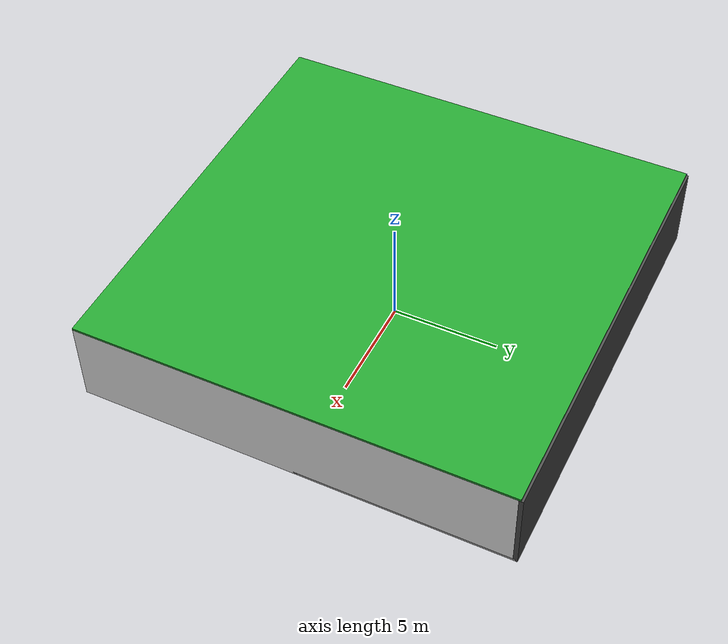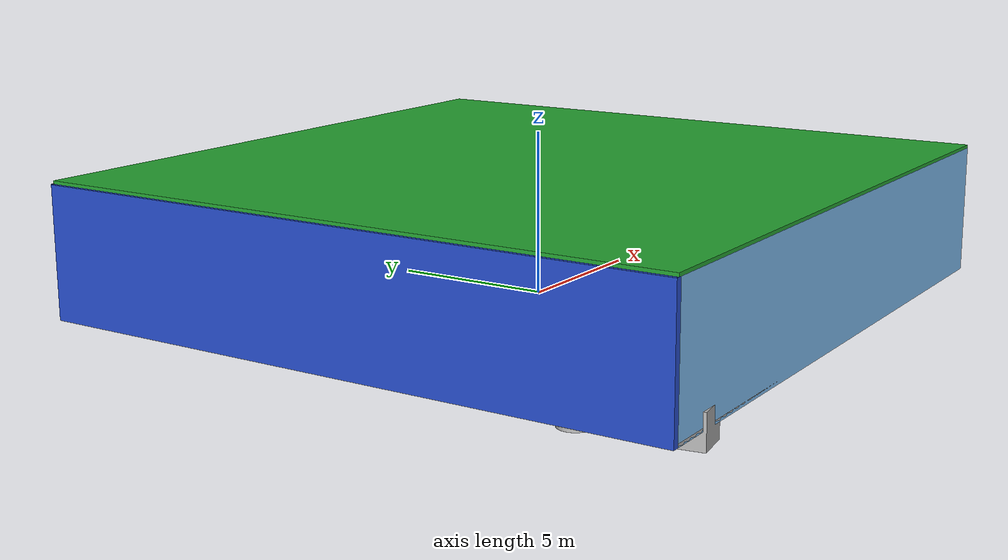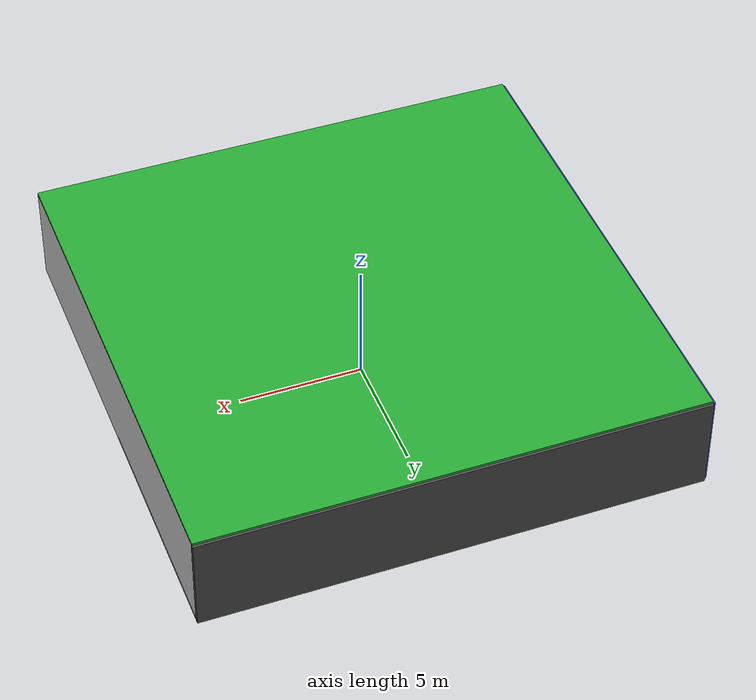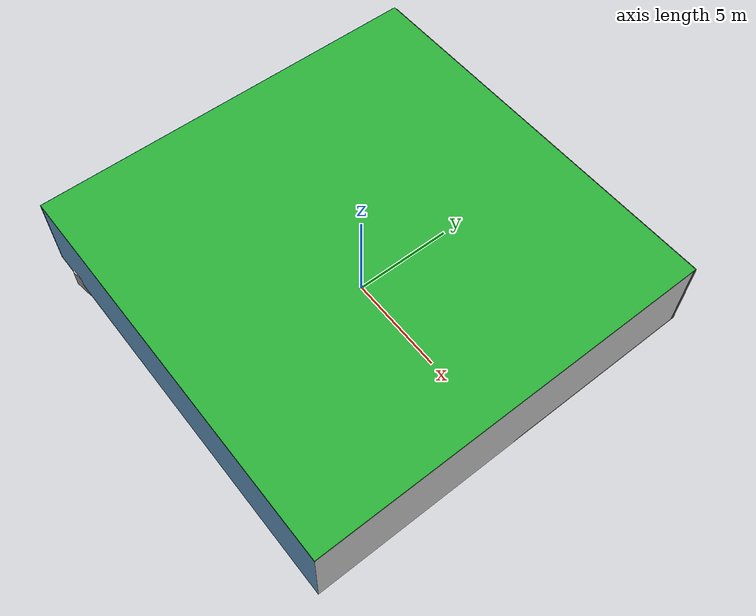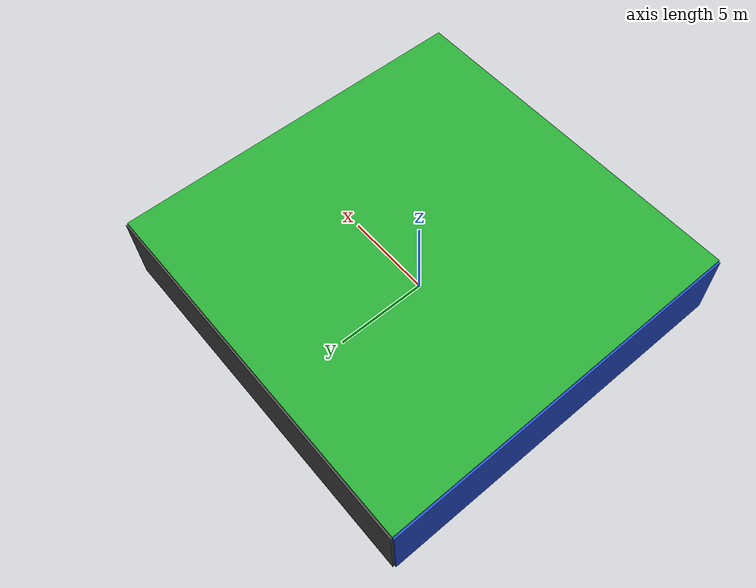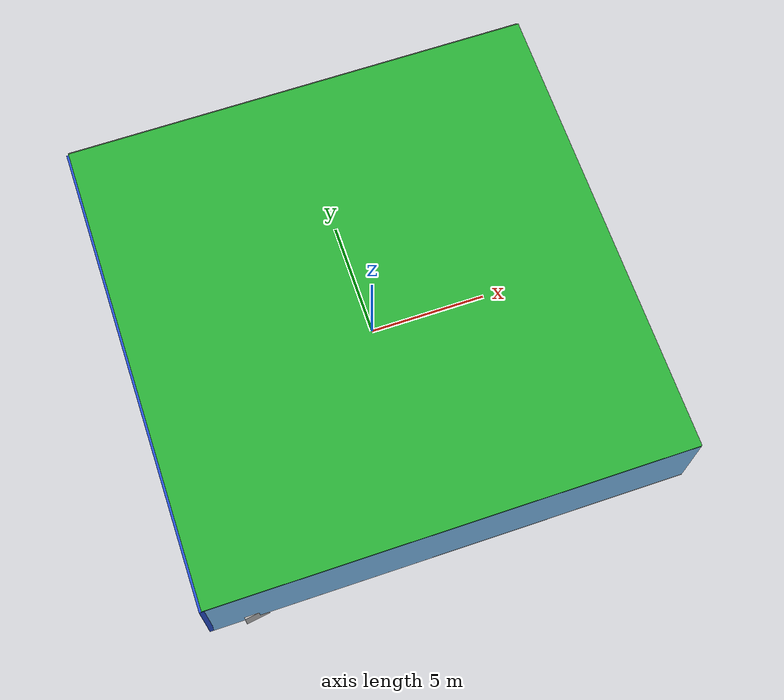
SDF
<sdf version="1.4">
 <world name="default">
  <physics type="ode">
   <max_step_size>0.001</max_step_size>
   <real_time_factor>1</real_time_factor>
   <real_time_update_rate>1000</real_time_update_rate>
   <gravity>0 0 -9.8</gravity>
  </physics>
  <scene><ambient>0.4 0.4 0.4 1</ambient><background>0.7 0.7 0.7 1</background><shadows>1</shadows></scene>
  <model name="Surrounding">
   <static>1</static>
   <link name="Ceiling">
    <collision name="Ceiling_Collision"><geometry><box><size>20 20 0.1</size></box></geometry></collision>
    <visual name="Ceiling_Visual">
     <geometry><box><size>20 20 0.1</size></box></geometry>
     <material>
      <script><uri>file://media/materials/scripts/gazebo.material</uri><name>Gazebo/GreenGlow</name></script>
     </material>
    </visual>
    <pose>0 0 4.05 0 0 0</pose>
   </link>
   <link name="Wall_South">
    <collision name="Wall_South_Collision">
     <geometry><box><size>20 0 4</size></box></geometry>
     <pose>0 0 2 0 -0 0</pose>
    </collision>
    <visual name="Wall_South_Visual">
     <pose>0 0 2 0 -0 0</pose>
     <geometry><box><size>20 0 4</size></box></geometry>
     <material>
      <script><uri>file://media/materials/scripts/gazebo.material</uri><name>Gazebo/SkyBlue</name></script>
     </material>
    </visual>
    <velocity_decay><linear>0</linear><angular>0</angular></velocity_decay>
    <pose>0 -10 0 0 -0 0</pose>
   </link>
   <link name="Wall_East">
    <collision name="Wall_21_Collision">
     <geometry><box><size>20 0 4</size></box></geometry>
     <pose>0 0 2 0 -0 0</pose>
    </collision>
    <visual name="Wall_21_Visual">
     <pose>0 0 2 0 -0 0</pose>
     <geometry><box><size>20 0 4</size></box></geometry>
     <material>
      <script><uri>file://media/materials/scripts/gazebo.material</uri><name>Gazebo/WhiteGlow</name></script>
     </material>
    </visual>
    <velocity_decay><linear>0</linear><angular>0</angular></velocity_decay>
    <pose>10 0 0 0 -0 1.5708</pose>
   </link>
   <link name="Wall_North">
    <collision name="Wall_22_Collision">
     <geometry><box><size>20 0.2 4</size></box></geometry>
     <pose>0 0 2 0 -0 0</pose>
    </collision>
    <visual name="Wall_22_Visual">
     <pose>0 0 2 0 -0 0</pose>
     <geometry><box><size>20 0.2 4</size></box></geometry>
     <material>
      <script><uri>file://media/materials/scripts/gazebo.material</uri><name>Gazebo/DarkGrey</name></script>
     </material>
    </visual>
    <velocity_decay><linear>0</linear><angular>0</angular></velocity_decay>
    <pose>0 10 0 0 -0 0</pose>
   </link>
   <link name="Wall_West">
    <collision name="Wall_23_Collision">
     <geometry><box><size>20 0.2 4</size></box></geometry>
     <pose>0 0 2 0 -0 0</pose>
    </collision>
    <visual name="Wall_23_Visual">
     <pose>0 0 2 0 -0 0</pose>
     <geometry><box><size>20 0.2 4</size></box></geometry>
     <material>
      <script><uri>file://media/materials/scripts/gazebo.material</uri><name>Gazebo/BlueGlow</name></script>
     </material>
    </visual>
    <velocity_decay><linear>0</linear><angular>0</angular></velocity_decay>
    <pose>-10 0 0 0 0 -1.5708</pose>
   </link>
   <link name="Ground_link">
    <collision name="collision">
     <pose>0 0 .05 0 -0 0</pose>
     <geometry><box><size>20 20 0.1</size></box></geometry>
    </collision>
    <visual name="visual">
     <pose>0 0 .05 0 -0 0</pose>
     <geometry><box><size>20 20 0.1</size></box></geometry>
     <material>
      <script><uri>file://media/materials/scripts/gazebo.material</uri><name>Gazebo/Pioneer2Body</name></script>
     </material>
    </visual>
   </link>
   <static>1</static>
  </model>
  <spherical_coordinates>
   <surface_model>EARTH_WGS84</surface_model>
   <latitude_deg>0</latitude_deg>
   <longitude_deg>0</longitude_deg>
   <elevation>0</elevation>
   <heading_deg>0</heading_deg>
  </spherical_coordinates>
  <light name="lightball_0" type="diffuse">
   <diffuse>0.8 0.8 0.8 1</diffuse>
   <specular>0.2 0.2 0.2 1</specular>
   <attenuation>
    <range>100</range>
    <constant>0.7</constant>
    <linear>0.01</linear>
    <quadratic>0.001</quadratic>
   </attenuation>
   <direction>-0.5 0.1 -0.9</direction>
   <pose>6.62815216111 8.31020105036 2.63860060734 0 0 0</pose>
  </light>
  <light name="lightball_1" type="diffuse">
   <diffuse>0.8 0.8 0.8 1</diffuse>
   <specular>0.2 0.2 0.2 1</specular>
   <attenuation>
    <range>100</range>
    <constant>0.7</constant>
    <linear>0.01</linear>
    <quadratic>0.001</quadratic>
   </attenuation>
   <direction>-0.5 0.1 -0.9</direction>
   <pose>5.6440138071 3.66468887008 1.32367206658 0 0 0</pose>
  </light>
  <light name="lightball_2" type="diffuse">
   <diffuse>0.8 0.8 0.8 1</diffuse>
   <specular>0.2 0.2 0.2 1</specular>
   <attenuation>
    <range>100</range>
    <constant>0.7</constant>
    <linear>0.01</linear>
    <quadratic>0.001</quadratic>
   </attenuation>
   <direction>-0.5 0.1 -0.9</direction>
   <pose>6.93008211523 -0.687091915491 3.30365714978 0 0 0</pose>
  </light>
  <light name="lightball_3" type="diffuse">
   <diffuse>0.8 0.8 0.8 1</diffuse>
   <specular>0.2 0.2 0.2 1</specular>
   <attenuation>
    <range>100</range>
    <constant>0.7</constant>
    <linear>0.01</linear>
    <quadratic>0.001</quadratic>
   </attenuation>
   <direction>-0.5 0.1 -0.9</direction>
   <pose>0.427423902247 -3.07125599627 3.37556302597 0 0 0</pose>
  </light>
  <light name="lightball_4" type="diffuse">
   <diffuse>0.8 0.8 0.8 1</diffuse>
   <specular>0.2 0.2 0.2 1</specular>
   <attenuation>
    <range>100</range>
    <constant>0.7</constant>
    <linear>0.01</linear>
    <quadratic>0.001</quadratic>
   </attenuation>
   <direction>-0.5 0.1 -0.9</direction>
   <pose>-9.03858949797 4.94135523232 3.48130193257 0 0 0</pose>
  </light>
  <light name="lightball_5" type="diffuse">
   <diffuse>0.8 0.8 0.8 1</diffuse>
   <specular>0.2 0.2 0.2 1</specular>
   <attenuation>
    <range>100</range>
    <constant>0.7</constant>
    <linear>0.01</linear>
    <quadratic>0.001</quadratic>
   </attenuation>
   <direction>-0.5 0.1 -0.9</direction>
   <pose>-9.20352526115 -3.29482474165 3.17210908067 0 0 0</pose>
  </light>
  <light name="lightball_6" type="diffuse">
   <diffuse>0.8 0.8 0.8 1</diffuse>
   <specular>0.2 0.2 0.2 1</specular>
   <attenuation>
    <range>100</range>
    <constant>0.7</constant>
    <linear>0.01</linear>
    <quadratic>0.001</quadratic>
   </attenuation>
   <direction>-0.5 0.1 -0.9</direction>
   <pose>-5.73512413436 6.95570238305 3.77594112833 0 0 0</pose>
  </light>
  <light name="lightball_7" type="diffuse">
   <diffuse>0.8 0.8 0.8 1</diffuse>
   <specular>0.2 0.2 0.2 1</specular>
   <attenuation>
    <range>100</range>
    <constant>0.7</constant>
    <linear>0.01</linear>
    <quadratic>0.001</quadratic>
   </attenuation>
   <direction>-0.5 0.1 -0.9</direction>
   <pose>-7.55447112437 0.524382616384 2.13624072312 0 0 0</pose>
  </light>
  <light name="lightball_8" type="diffuse">
   <diffuse>0.8 0.8 0.8 1</diffuse>
   <specular>0.2 0.2 0.2 1</specular>
   <attenuation>
    <range>100</range>
    <constant>0.7</constant>
    <linear>0.01</linear>
    <quadratic>0.001</quadratic>
   </attenuation>
   <direction>-0.5 0.1 -0.9</direction>
   <pose>6.80194072508 -5.87540962278 2.38353921808 0 0 0</pose>
  </light>
  <light name="lightball_9" type="diffuse">
   <diffuse>0.8 0.8 0.8 1</diffuse>
   <specular>0.2 0.2 0.2 1</specular>
   <attenuation>
    <range>100</range>
    <constant>0.7</constant>
    <linear>0.01</linear>
    <quadratic>0.001</quadratic>
   </attenuation>
   <direction>-0.5 0.1 -0.9</direction>
   <pose>2.14351489385 4.58600111909 3.78353180588 0 0 0</pose>
  </light>
  <light name="lightball_10" type="diffuse">
   <diffuse>0.8 0.8 0.8 1</diffuse>
   <specular>0.2 0.2 0.2 1</specular>
   <attenuation>
    <range>100</range>
    <constant>0.7</constant>
    <linear>0.01</linear>
    <quadratic>0.001</quadratic>
   </attenuation>
   <direction>-0.5 0.1 -0.9</direction>
   <pose>5.69725479029 -5.37783141941 0.80696666516 0 0 0</pose>
  </light>
  <light name="lightball_11" type="diffuse">
   <diffuse>0.8 0.8 0.8 1</diffuse>
   <specular>0.2 0.2 0.2 1</specular>
   <attenuation>
    <range>100</range>
    <constant>0.7</constant>
    <linear>0.01</linear>
    <quadratic>0.001</quadratic>
   </attenuation>
   <direction>-0.5 0.1 -0.9</direction>
   <pose>-6.09932679171 -3.03901681614 0.525725927986 0 0 0</pose>
  </light>
  <light name="lightball_12" type="diffuse">
   <diffuse>0.8 0.8 0.8 1</diffuse>
   <specular>0.2 0.2 0.2 1</specular>
   <attenuation>
    <range>100</range>
    <constant>0.7</constant>
    <linear>0.01</linear>
    <quadratic>0.001</quadratic>
   </attenuation>
   <direction>-0.5 0.1 -0.9</direction>
   <pose>7.99132049574 3.80958046477 1.40887628098 0 0 0</pose>
  </light>
  <include>
   <uri>model://textured_shapes</uri>
   <pose>-8.43439814954 -8.03648220033 0 0 0 0.144921790467</pose>
  </include>
  <include><uri>model://table</uri><pose>-7.11121013745 3.9440279213 0 0 0 0.80223750213</pose></include>
  <include>
   <uri>model://robocup_3Dsim_goal</uri>
   <pose>-5.31957407304 6.82939513118 0 0 0 0.560728548313</pose>
  </include>
  <include>
   <uri>model://textured_shapes</uri>
   <pose>-2.42124659094 -7.86422336109 0 0 0 1.09084167578</pose>
  </include>
  <include><uri>model://cabinet</uri><pose>-0.656124734926 -1.29574857224 0 0 0 2.90275855673</pose></include>
  <include>
   <uri>model://textured_shapes</uri>
   <pose>1.67121145295 0.994018801728 0 0 0 1.30846667178</pose>
  </include>
  <include>
   <uri>model://robocup_3Dsim_goal</uri>
   <pose>1.33436249649 5.49840012332 0 0 0 2.64766415557</pose>
  </include>
  <include><uri>model://cabinet</uri><pose>5.13415452173 4.48528593624 0 0 0 2.90842683889</pose></include>
  <include>
   <uri>model://robocup_3Dsim_goal</uri>
   <pose>7.18198668412 -4.84288228804 0 0 0 2.59925867059</pose>
  </include>
 </world>
</sdf>

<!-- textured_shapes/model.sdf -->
<sdf version="1.6">
  <model name="textured_shapes">
    <pose>0 0 0.5 0 0 0</pose>
    <link name="box">
      <pose>0 -1.5 0 0 0 0</pose>
      <collision name="collision">
        <geometry>
          <box>
            <size>1 1 1</size>
          </box>
        </geometry>
      </collision>
      <visual name="visual">
        <geometry>
          <box>
            <size>1 1 1</size>
          </box>
        </geometry>
        <material>
          <script>
            <uri>model://../model_source/models/textured_shapes/materials/scripts</uri>
            <uri>model://../model_source/models/textured_shapes/materials/textures</uri>
            <name>TexturedShape/Squares</name>
          </script>
        </material>
      </visual>
    </link>
    <link name="sphere">
      <collision name="collision">
        <geometry>
          <sphere>
            <radius>0.5</radius>
          </sphere>
        </geometry>
      </collision>
      <visual name="visual">
        <geometry>
          <sphere>
            <radius>0.5</radius>
          </sphere>
        </geometry>
        <material>
          <script>
            <uri>model://../model_source/models/textured_shapes/materials/scripts</uri>
            <uri>model://../model_source/models/textured_shapes/materials/textures</uri>
            <name>TexturedShape/Squares</name>
          </script>
        </material>
      </visual>
    </link>
    <link name="cylinder">
      <pose>0 1.5 0 0 0 0</pose>
      <collision name="collision">
        <geometry>
          <cylinder>
            <radius>0.5</radius>
            <length>1</length>
          </cylinder>
        </geometry>
      </collision>
      <visual name="visual">
        <geometry>
          <cylinder>
            <radius>0.5</radius>
            <length>1</length>
          </cylinder>
        </geometry>
        <material>
          <script>
            <uri>model://../model_source/models/textured_shapes/materials/scripts</uri>
            <uri>model://../model_source/models/textured_shapes/materials/textures</uri>
            <name>TexturedShape/Squares</name>
          </script>
        </material>
      </visual>
    </link>
  </model>
</sdf>

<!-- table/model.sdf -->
<sdf version="1.5">
  <model name="table">
    <static>true</static>
    <link name="link">
      <collision name="surface">
        <pose>0 0 1.0 0 0 0</pose>
        <geometry>
          <box>
            <size>1.5 0.8 0.03</size>
          </box>
        </geometry>
        <surface>
          <friction>
            <ode>
              <mu>0.6</mu>
              <mu2>0.6</mu2>
            </ode>
          </friction>
        </surface>
      </collision>
      <visual name="visual1">
        <pose>0 0 1.0 0 0 0</pose>
        <geometry>
          <box>
            <size>1.5 0.8 0.03</size>
          </box>
        </geometry>
        <material>
          <script>
            <uri>model://media/materials/scripts/gazebo.material</uri>
            <name>Gazebo/Wood</name>
          </script>
        </material>
      </visual>
      <collision name="front_left_leg">
        <pose>0.68 0.38 0.5 0 0 0</pose>
        <geometry>
          <cylinder>
            <radius>0.02</radius>
            <length>1.0</length>
          </cylinder>
        </geometry>
      </collision>
      <visual name="front_left_leg">
        <pose>0.68 0.38 0.5 0 0 0</pose>
        <geometry>
          <cylinder>
            <radius>0.02</radius>
            <length>1.0</length>
          </cylinder>
        </geometry>
        <material>
          <script>
            <uri>model://media/materials/scripts/gazebo.material</uri>
            <name>Gazebo/Grey</name>
          </script>
        </material>
      </visual>
      <collision name="front_right_leg">
        <pose>0.68 -0.38 0.5 0 0 0</pose>
        <geometry>
          <cylinder>
            <radius>0.02</radius>
            <length>1.0</length>
          </cylinder>
        </geometry>
      </collision>
      <visual name="front_right_leg">
        <pose>0.68 -0.38 0.5 0 0 0</pose>
        <geometry>
          <cylinder>
            <radius>0.02</radius>
            <length>1.0</length>
          </cylinder>
        </geometry>
        <material>
          <script>
            <uri>model://media/materials/scripts/gazebo.material</uri>
            <name>Gazebo/Grey</name>
          </script>
        </material>
      </visual>
      <collision name="back_right_leg">
        <pose>-0.68 -0.38 0.5 0 0 0</pose>
        <geometry>
          <cylinder>
            <radius>0.02</radius>
            <length>1.0</length>
          </cylinder>
        </geometry>
      </collision>
      <visual name="back_right_leg">
        <pose>-0.68 -0.38 0.5 0 0 0</pose>
        <geometry>
          <cylinder>
            <radius>0.02</radius>
            <length>1.0</length>
          </cylinder>
        </geometry>
        <material>
          <script>
            <uri>model://media/materials/scripts/gazebo.material</uri>
            <name>Gazebo/Grey</name>
          </script>
        </material>
      </visual>
      <collision name="back_left_leg">
        <pose>-0.68 0.38 0.5 0 0 0</pose>
        <geometry>
          <cylinder>
            <radius>0.02</radius>
            <length>1.0</length>
          </cylinder>
        </geometry>
      </collision>
      <visual name="back_left_leg">
        <pose>-0.68 0.38 0.5 0 0 0</pose>
        <geometry>
          <cylinder>
            <radius>0.02</radius>
            <length>1.0</length>
          </cylinder>
        </geometry>
        <material>
          <script>
            <uri>model://media/materials/scripts/gazebo.material</uri>
            <name>Gazebo/Grey</name>
          </script>
        </material>
      </visual>
    </link>
  </model>
</sdf>

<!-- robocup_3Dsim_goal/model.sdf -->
<sdf version="1.5">
  <model name="robocup_3d_goal">
    <static>true</static>
    <link name="left_post">
      <pose>0 1.05 0.45 0 0 0</pose>
      <collision name="collision">
        <geometry>
          <cylinder>
            <radius>0.05</radius>
            <length>0.9</length>
          </cylinder>
        </geometry>
      </collision>
      <visual name="visual">
        <geometry>
          <cylinder>
            <radius>0.05</radius>
            <length>0.9</length>
          </cylinder>
        </geometry>
        <material>
          <script>
            <uri>file://media/materials/scripts/gazebo.material</uri>
            <name>Gazebo/ZincYellow</name>
          </script>
        </material>
      </visual>
    </link>
    <link name="left_support_horiz_lower">
      <pose>0.30 1.05 0.01 0 0 0</pose>
      <collision name="collision">
        <geometry>
          <box>
            <size>0.50 0.02 0.02</size>
          </box>
        </geometry>
      </collision>
      <visual name="visual">
        <geometry>
          <box>
            <size>0.50 0.02 0.02</size>
          </box>
        </geometry>
        <material>
          <script>
            <uri>file://media/materials/scripts/gazebo.material</uri>
            <name>Gazebo/White</name>
          </script>
        </material>
      </visual>
    </link>
    <link name="left_support_horiz_upper">
      <pose>0.30 1.05 0.79 0 0 0</pose>
      <collision name="collision">
        <geometry>
          <box>
            <size>0.50 0.02 0.02</size>
          </box>
        </geometry>
      </collision>
      <visual name="visual">
        <geometry>
          <box>
            <size>0.50 0.02 0.02</size>
          </box>
        </geometry>
        <material>
          <script>
            <uri>file://media/materials/scripts/gazebo.material</uri>
            <name>Gazebo/White</name>
          </script>
        </material>
      </visual>
    </link>
    <link name="left_support_vertical">
      <pose>0.56 1.05 0.4 0 1.5708 0</pose>
      <collision name="collision">
        <geometry>
          <box>
            <size>0.80 0.02 0.02</size>
          </box>
        </geometry>
      </collision>
      <visual name="visual">
        <geometry>
          <box>
            <size>0.80 0.02 0.02</size>
          </box>
        </geometry>
        <material>
          <script>
            <uri>file://media/materials/scripts/gazebo.material</uri>
            <name>Gazebo/White</name>
          </script>
        </material>
      </visual>
    </link>
    <link name="right_support_horiz_lower">
      <pose>0.30 -1.05 0.01 0 0 0</pose>
      <collision name="collision">
        <geometry>
          <box>
            <size>0.50 0.02 0.02</size>
          </box>
        </geometry>
      </collision>
      <visual name="visual">
        <geometry>
          <box>
            <size>0.50 0.02 0.02</size>
          </box>
        </geometry>
        <material>
          <script>
            <uri>file://media/materials/scripts/gazebo.material</uri>
            <name>Gazebo/White</name>
          </script>
        </material>
      </visual>
    </link>
    <link name="right_support_horiz_upper">
      <pose>0.30 -1.05 0.79 0 0 0</pose>
      <collision name="collision">
        <geometry>
          <box>
            <size>0.50 0.02 0.02</size>
          </box>
        </geometry>
      </collision>
      <visual name="visual">
        <geometry>
          <box>
            <size>0.50 0.02 0.02</size>
          </box>
        </geometry>
        <material>
          <script>
            <uri>file://media/materials/scripts/gazebo.material</uri>
            <name>Gazebo/White</name>
          </script>
        </material>
      </visual>
    </link>
    <link name="right_support_vertical">
      <pose>0.56 -1.05 0.4 0 1.5708 0</pose>
      <collision name="collision">
        <geometry>
          <box>
            <size>0.80 0.02 0.02</size>
          </box>
        </geometry>
      </collision>
      <visual name="visual">
        <geometry>
          <box>
            <size>0.80 0.02 0.02</size>
          </box>
        </geometry>
        <material>
          <script>
            <uri>file://media/materials/scripts/gazebo.material</uri>
            <name>Gazebo/White</name>
          </script>
        </material>
      </visual>
    </link>
    <link name="center_support_horiz_lower">
      <pose>0.56 0 0.01 0 1.5708 0</pose>
      <collision name="collision">
        <geometry>
          <box>
            <size>0.02 2.08 0.02</size>
          </box>
        </geometry>
      </collision>
      <visual name="visual">
        <geometry>
          <box>
            <size>0.02 2.08 0.02</size>
          </box>
        </geometry>
        <material>
          <script>
            <uri>file://media/materials/scripts/gazebo.material</uri>
            <name>Gazebo/White</name>
          </script>
        </material>
      </visual>
    </link>
    <link name="center_support_horiz_upper">
      <pose>0.56 0 0.79 0 1.5708 0</pose>
      <collision name="collision">
        <geometry>
          <box>
            <size>0.02 2.08 0.02</size>
          </box>
        </geometry>
      </collision>
      <visual name="visual">
        <geometry>
          <box>
            <size>0.02 2.08 0.02</size>
          </box>
        </geometry>
        <material>
          <script>
            <uri>file://media/materials/scripts/gazebo.material</uri>
            <name>Gazebo/White</name>
          </script>
        </material>
      </visual>
    </link>
    <link name="right_post">
      <pose>0 -1.05 0.45 0 0 0</pose>
      <collision name="collision">
        <geometry>
          <cylinder>
            <radius>0.05</radius>
            <length>0.9</length>
          </cylinder>
        </geometry>
      </collision>
      <visual name="visual">
        <geometry>
          <cylinder>
            <radius>0.05</radius>
            <length>0.9</length>
          </cylinder>
        </geometry>
        <material>
          <script>
            <uri>file://media/materials/scripts/gazebo.material</uri>
            <name>Gazebo/ZincYellow</name>
          </script>
        </material>
      </visual>
    </link>
    <link name="crossbar">
      <pose>0 0 0.85 1.57 1.57 0</pose>
      <collision name="collision">
        <geometry>
          <cylinder>
            <radius>0.05</radius>
            <length>2.0</length>
          </cylinder>
        </geometry>
      </collision>
      <visual name="visual">
        <geometry>
          <cylinder>
            <radius>0.05</radius>
            <length>2.0</length>
          </cylinder>
        </geometry>
        <material>
          <script>
            <uri>file://media/materials/scripts/gazebo.material</uri>
            <name>Gazebo/ZincYellow</name>
          </script>
        </material>
      </visual>
    </link>
    <link name="center_net">
      <pose>0.56 0 0.40 0 0 0</pose>
      <collision name="collision">
        <geometry>
          <box>
            <size>0.01 2.1 0.80</size>
          </box>
        </geometry>
      </collision>
      <visual name="visual">
        <geometry>
          <box>
            <size>0.01 2.1 0.80</size>
          </box>
        </geometry>
        <material>
          <script>
            <uri>model://../model_source/models/robocup09_spl_field/materials/scripts/</uri>
            <uri>model://../model_source/models/robocup09_spl_field/materials/textures/</uri>
            <name>RoboCup/Net</name>
          </script>
        </material>
      </visual>
    </link>
    <link name="left_net">
      <pose>0.30 1.05 0.40 0 0 0</pose>
      <collision name="collision">
        <geometry>
          <box>
            <size>0.50 0.01 0.76</size>
          </box>
        </geometry>
      </collision>
      <visual name="visual">
        <geometry>
          <box>
            <size>0.50 0.01 0.76</size>
          </box>
        </geometry>
        <material>
          <script>
            <uri>model://../model_source/models/robocup09_spl_field/materials/scripts/</uri>
            <uri>model://../model_source/models/robocup09_spl_field/materials/textures/</uri>
            <name>RoboCup/Net</name>
          </script>
        </material>
      </visual>
    </link>
    <link name="right_net">
      <pose>0.30 -1.05 0.40 0 0 0</pose>
      <collision name="collision">
        <geometry>
          <box>
            <size>0.50 0.01 0.76</size>
          </box>
        </geometry>
      </collision>
      <visual name="visual">
        <geometry>
          <box>
            <size>0.50 0.01 0.76</size>
          </box>
        </geometry>
        <material>
          <script>
            <uri>model://../model_source/models/robocup09_spl_field/materials/scripts/</uri>
            <uri>model://../model_source/models/robocup09_spl_field/materials/textures/</uri>
            <name>RoboCup/Net</name>
          </script>
        </material>
      </visual>
    </link>
  </model>
</sdf>

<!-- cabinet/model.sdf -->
<sdf version="1.5">
  <model name="cabinet">
    <static>true</static>
    <link name="cabinet_bottom_plate">
      <inertial>
        <pose>0 0 -1 0 0 0</pose>
        <inertia>
          <ixx>2.050000</ixx>
          <ixy>0</ixy>
          <ixz>0</ixz>
          <iyy>2.050000</iyy>
          <iyz>0</iyz>
          <izz>2.050000</izz>
        </inertia>
        <mass>25.000000</mass>
      </inertial>
      <collision name="cabinet_bottom_plate_geom">
        <pose>0 0 0.010000 0 0 0</pose>
        <geometry>
          <box>
            <size>0.450000 0.450000 0.020000</size>
          </box>
        </geometry>
      </collision>
      <visual name="cabinet_bottom_plate_geom_visual">
        <pose>0 0 0.010000 0 0 0</pose>
        <geometry>
          <box>
            <size>0.450000 0.450000 0.020000</size>
          </box>
        </geometry>
        <material>
          <script>
            <uri>model://media/materials/scripts/gazebo.material</uri>
            <name>Gazebo/Wood</name>
          </script>
        </material>
      </visual>
      <collision name="cabinet_bottom_plate_geom_cabinet_back_plate">
        <pose>0.235000 0 0.510000 0 0 0</pose>
        <geometry>
          <box>
            <size>0.020000 0.450000 1.020000</size>
          </box>
        </geometry>
      </collision>
      <visual name="cabinet_bottom_plate_geom_cabinet_back_plate_visual">
        <pose>0.235000 0 0.510000 0 0 0</pose>
        <geometry>
          <box>
            <size>0.020000 0.450000 1.020000</size>
          </box>
        </geometry>
        <material>
          <script>
            <uri>model://media/materials/scripts/gazebo.material</uri>
            <name>Gazebo/Wood</name>
          </script>
        </material>
      </visual>
      <collision name="cabinet_bottom_plate_geom_cabinet_left_plate">
        <pose>0 0.235000 0.510000 0 0 0</pose>
        <geometry>
          <box>
            <size>0.450000 0.020000 1.020000</size>
          </box>
        </geometry>
      </collision>
      <visual name="cabinet_bottom_plate_geom_cabinet_left_plate_visual">
        <pose>0 0.235000 0.510000 0 0 0</pose>
        <geometry>
          <box>
            <size>0.450000 0.020000 1.020000</size>
          </box>
        </geometry>
        <material>
          <script>
            <uri>model://media/materials/scripts/gazebo.material</uri>
            <name>Gazebo/Wood</name>
          </script>
        </material>
      </visual>
      <collision name="cabinet_bottom_plate_geom_cabinet_middle_plate">
        <pose>0 0 0.510000 0 0 0</pose>
        <geometry>
          <box>
            <size>0.450000 0.450000 0.020000</size>
          </box>
        </geometry>
      </collision>
      <visual name="cabinet_bottom_plate_geom_cabinet_middle_plate_visual">
        <pose>0 0 0.510000 0 0 0</pose>
        <geometry>
          <box>
            <size>0.450000 0.450000 0.020000</size>
          </box>
        </geometry>
        <material>
          <script>
            <uri>model://media/materials/scripts/gazebo.material</uri>
            <name>Gazebo/Wood</name>
          </script>
        </material>
      </visual>
      <collision name="cabinet_bottom_plate_geom_cabinet_right_plate">
        <pose>0 -0.235000 0.510000 0 0 0</pose>
        <geometry>
          <box>
            <size>0.450000 0.020000 1.020000</size>
          </box>
        </geometry>
      </collision>
      <visual name="cabinet_bottom_plate_geom_cabinet_right_plate_visual">
        <pose>0 -0.235000 0.510000 0 0 0</pose>
        <geometry>
          <box>
            <size>0.450000 0.020000 1.020000</size>
          </box>
        </geometry>
        <material>
          <script>
            <uri>model://media/materials/scripts/gazebo.material</uri>
            <name>Gazebo/Wood</name>
          </script>
        </material>
      </visual>
      <collision name="cabinet_bottom_plate_geom_cabinet_top_plate">
        <pose>0 0 1.010000 0 0 0</pose>
        <geometry>
          <box>
            <size>0.450000 0.450000 0.020000</size>
          </box>
        </geometry>
      </collision>
      <visual name="cabinet_bottom_plate_geom_cabinet_top_plate_visual">
        <pose>0 0 1.010000 0 0 0</pose>
        <geometry>
          <box>
            <size>0.450000 0.450000 0.020000</size>
          </box>
        </geometry>
        <material>
          <script>
            <uri>model://media/materials/scripts/gazebo.material</uri>
            <name>Gazebo/Wood</name>
          </script>
        </material>
      </visual>
    </link>
  </model>
</sdf>
